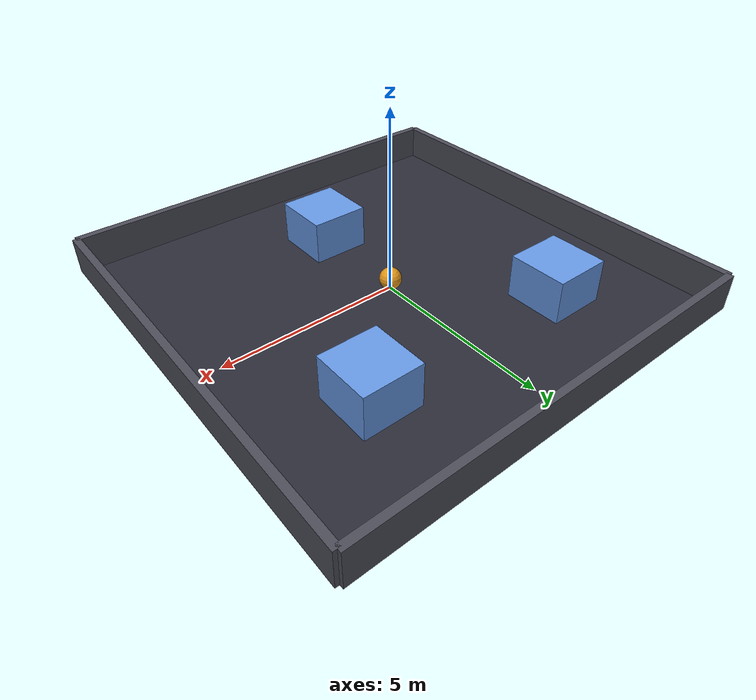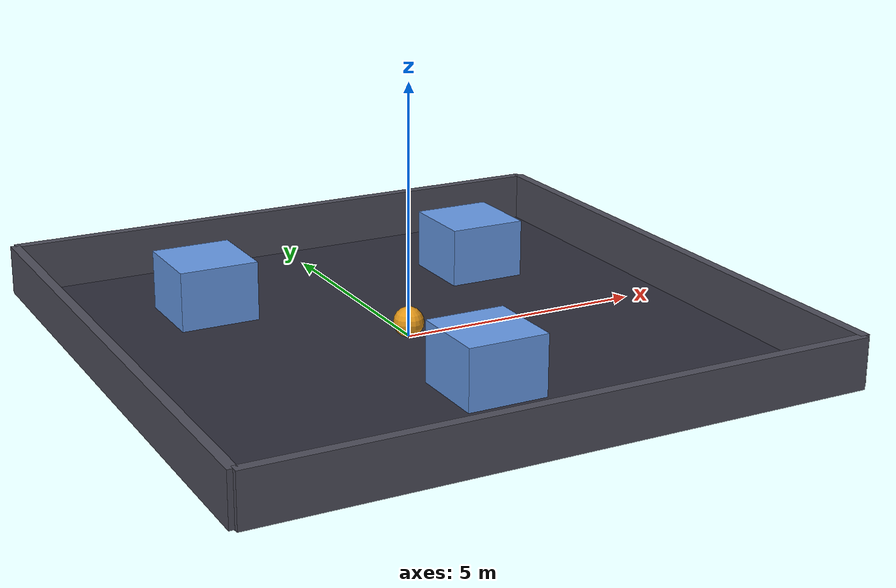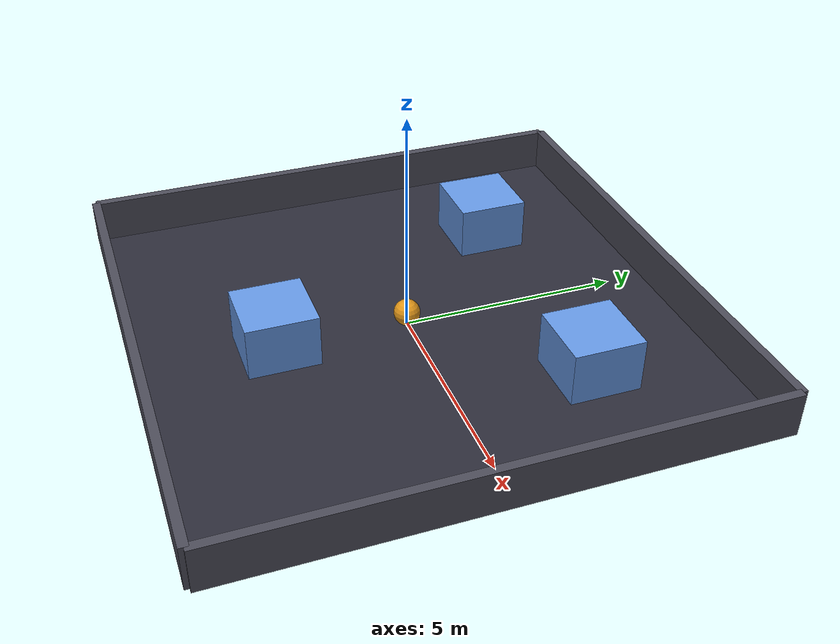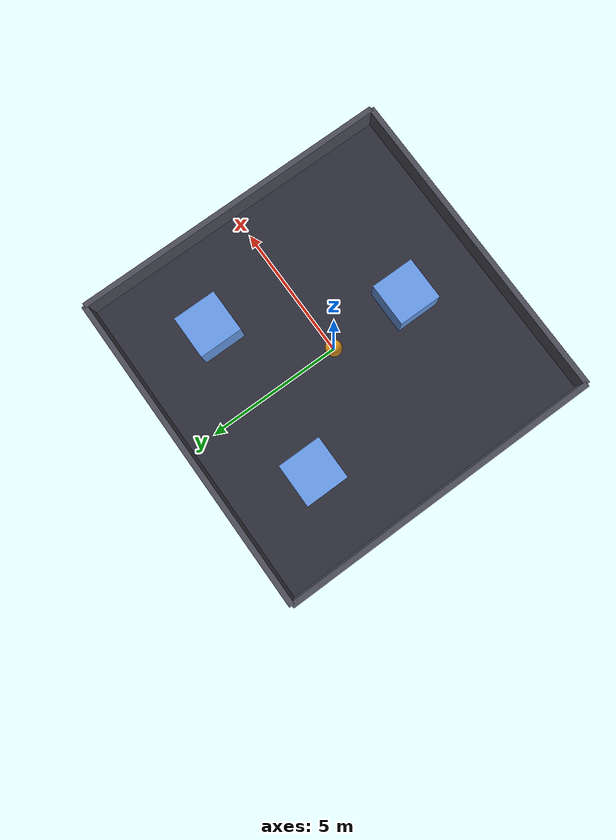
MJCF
<mujoco model="bazaar">
  <option timestep="0.02" gravity="0 0 0"/>

  <asset>
    <texture type="skybox" builtin="gradient" rgb1=".1 .1 .2" rgb2=".0 .0 .0" width="512" height="512"/>
    <texture name="floor_tex" type="2d" builtin="checker" rgb1=".2 .2 .25" rgb2=".15 .15 .2" width="512" height="512"/>
    <material name="floor_mat" texture="floor_tex" texrepeat="8 8"/>
    <material name="stall_mat" rgba=".4 .6 .9 1"/>
    <material name="robot_mat" rgba=".9 .6 .1 1"/>
    <material name="wall_mat" rgba=".3 .3 .35 1"/>
  </asset>

  <worldbody>
    <!-- Floor -->
    <geom name="floor" type="plane" size="6 6 .1" material="floor_mat"/>

    <!-- Arena walls (12 m × 12 m interior) -->
    <geom name="wall_n" type="box" pos="0  6 .5" size="6 .1 .5" material="wall_mat"/>
    <geom name="wall_s" type="box" pos="0 -6 .5" size="6 .1 .5" material="wall_mat"/>
    <geom name="wall_e" type="box" pos=" 6 0 .5" size=".1 6 .5" material="wall_mat"/>
    <geom name="wall_w" type="box" pos="-6 0 .5" size=".1 6 .5" material="wall_mat"/>

    <!-- Stall A: Pottery Palace  (-3,  3) -->
    <body name="stall_pottery" pos="-3 3 0">
      <geom name="stall_pottery_geom" type="box" size=".8 .8 .6" pos="0 0 .6" material="stall_mat"/>
      <site name="stall_pottery_site" pos="0 0 0" size=".05"/>
    </body>

    <!-- Stall B: Textile Traders ( 3,  3) -->
    <body name="stall_textile" pos="3 3 0">
      <geom name="stall_textile_geom" type="box" size=".8 .8 .6" pos="0 0 .6" material="stall_mat"/>
      <site name="stall_textile_site" pos="0 0 0" size=".05"/>
    </body>

    <!-- Stall C: Spice Garden   ( 0, -3) -->
    <body name="stall_spices" pos="0 -3 0">
      <geom name="stall_spices_geom" type="box" size=".8 .8 .6" pos="0 0 .6" material="stall_mat"/>
      <site name="stall_spices_site" pos="0 0 0" size=".05"/>
    </body>

    <!-- Robot: starts at origin, moves via velocity actuator -->
    <body name="robot" pos="0 0 .3">
      <freejoint name="robot_joint"/>
      <geom name="robot_geom" type="sphere" size=".3" material="robot_mat" mass="5"/>
      <site name="robot_site" pos="0 0 0" size=".05"/>
    </body>
  </worldbody>

  <actuator>
    <!-- Velocity actuators on robot x/y — give direct velocity control -->
    <velocity name="vel_x" joint="robot_joint" gear="1 0 0 0 0 0" kv="50"/>
    <velocity name="vel_y" joint="robot_joint" gear="0 1 0 0 0 0" kv="50"/>
  </actuator>
</mujoco>
